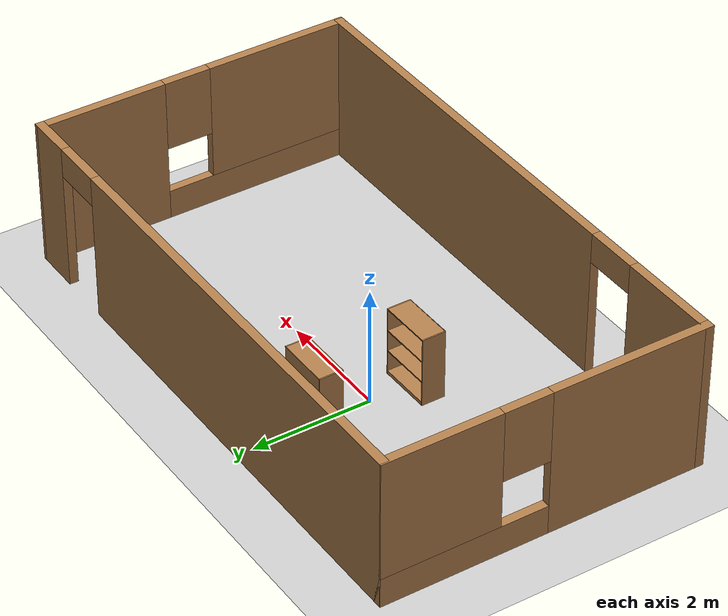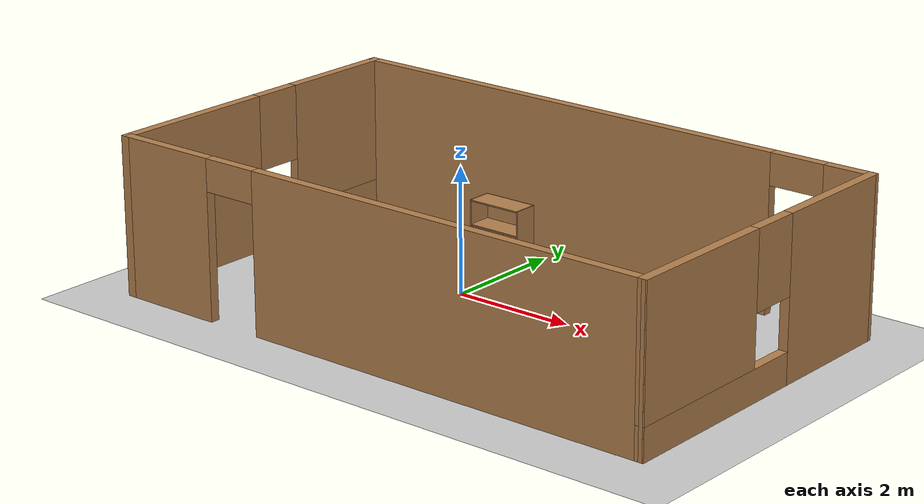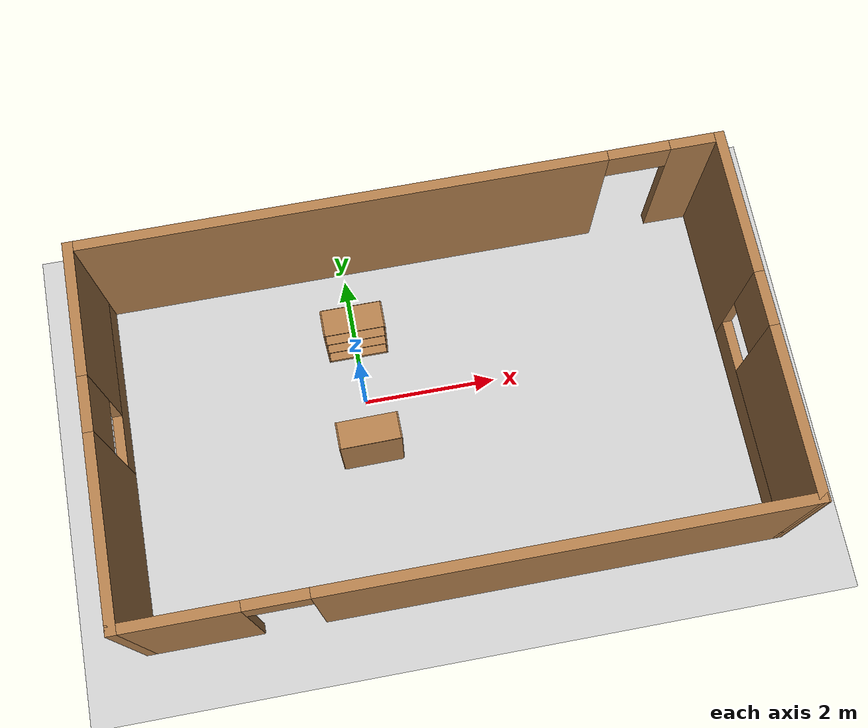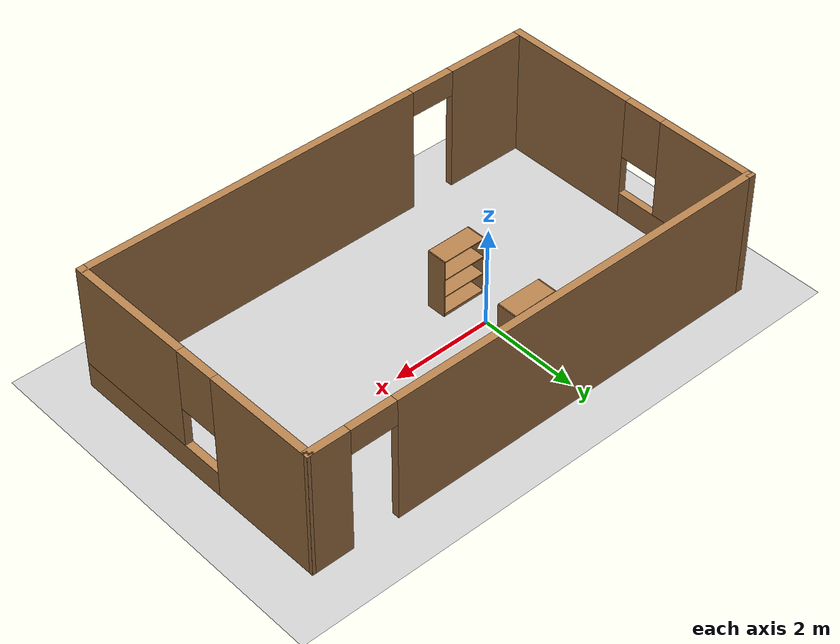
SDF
<sdf version="1.7">
 <world name="default">
  <light name="sun" type="directional">
   <pose>0 0 10 0 -0 0</pose>
   <diffuse>0.8 0.8 0.8 1</diffuse>
   <specular>0.2 0.2 0.2 1</specular>
   <attenuation>
    <range>1000</range>
    <constant>0.9</constant>
    <linear>0.01</linear>
    <quadratic>0.001</quadratic>
   </attenuation>
   <direction>-0.5 0.1 -0.9</direction>
   <spot><inner_angle>0</inner_angle><outer_angle>0</outer_angle><falloff>0</falloff></spot>
  </light>
  <model name="ground_plane">
   <static>1</static>
   <link name="link">
    <collision name="collision">
     <geometry><plane><normal>0 0 1</normal><size>100 100</size></plane></geometry>
     <surface>
      <contact><collide_bitmask>65535</collide_bitmask></contact>
      <friction><ode><mu>100</mu><mu2>50</mu2></ode></friction>
     </surface>
    </collision>
    <visual name="visual">
     <cast_shadows>0</cast_shadows>
     <geometry><plane><normal>0 0 1</normal><size>100 100</size></plane></geometry>
     <material>
      <script><uri>file://media/materials/scripts/gazebo.material</uri><name>Gazebo/Grey</name></script>
     </material>
    </visual>
   </link>
  </model>
  <gravity>0 0 -9.8</gravity>
  <magnetic_field>6e-06 2.3e-05 -4.2e-05</magnetic_field>
  <atmosphere type="adiabatic"/>
  <physics type="ode">
   <max_step_size>0.001</max_step_size>
   <real_time_factor>1</real_time_factor>
   <real_time_update_rate>1000</real_time_update_rate>
  </physics>
  <scene><ambient>0.4 0.4 0.4 1</ambient><background>0.7 0.7 0.7 1</background><shadows>1</shadows></scene>
  <audio><device>default</device></audio>
  <spherical_coordinates>
   <surface_model>EARTH_WGS84</surface_model>
   <latitude_deg>0</latitude_deg>
   <longitude_deg>0</longitude_deg>
   <elevation>0</elevation>
   <heading_deg>0</heading_deg>
  </spherical_coordinates>
  <model name="bookshelf">
   <static>1</static>
   <link name="link">
    <inertial><mass>1</mass></inertial>
    <collision name="back">
     <pose>0 0.005 0.6 0 -0 0</pose>
     <geometry><box><size>0.9 0.01 1.2</size></box></geometry>
    </collision>
    <visual name="visual1">
     <pose>0 0.005 0.6 0 -0 0</pose>
     <geometry><box><size>0.9 0.01 1.2</size></box></geometry>
     <material>
      <script><uri>file://media/materials/scripts/gazebo.material</uri><name>Gazebo/Wood</name></script>
     </material>
    </visual>
    <collision name="left_side">
     <pose>0.45 -0.195 0.6 0 -0 0</pose>
     <geometry><box><size>0.02 0.4 1.2</size></box></geometry>
    </collision>
    <visual name="visual2">
     <pose>0.45 -0.195 0.6 0 -0 0</pose>
     <geometry><box><size>0.02 0.4 1.2</size></box></geometry>
     <material>
      <script><uri>file://media/materials/scripts/gazebo.material</uri><name>Gazebo/Wood</name></script>
     </material>
    </visual>
    <collision name="right_side">
     <pose>-0.45 -0.195 0.6 0 -0 0</pose>
     <geometry><box><size>0.02 0.4 1.2</size></box></geometry>
    </collision>
    <visual name="visual3">
     <pose>-0.45 -0.195 0.6 0 -0 0</pose>
     <geometry><box><size>0.02 0.4 1.2</size></box></geometry>
     <material>
      <script><uri>file://media/materials/scripts/gazebo.material</uri><name>Gazebo/Wood</name></script>
     </material>
    </visual>
    <collision name="bottom">
     <pose>0 -0.195 0.03 0 -0 0</pose>
     <geometry><box><size>0.88 0.4 0.06</size></box></geometry>
    </collision>
    <visual name="visual4">
     <pose>0 -0.195 0.03 0 -0 0</pose>
     <geometry><box><size>0.88 0.4 0.06</size></box></geometry>
     <material>
      <script><uri>file://media/materials/scripts/gazebo.material</uri><name>Gazebo/Wood</name></script>
     </material>
    </visual>
    <collision name="top">
     <pose>0 -0.195 1.19 0 -0 0</pose>
     <geometry><box><size>0.88 0.4 0.02</size></box></geometry>
    </collision>
    <visual name="visual5">
     <pose>0 -0.195 1.19 0 -0 0</pose>
     <geometry><box><size>0.88 0.4 0.02</size></box></geometry>
     <material>
      <script><uri>file://media/materials/scripts/gazebo.material</uri><name>Gazebo/Wood</name></script>
     </material>
    </visual>
    <collision name="low_shelf">
     <pose>0 -0.195 0.43 0 -0 0</pose>
     <geometry><box><size>0.88 0.4 0.02</size></box></geometry>
    </collision>
    <visual name="visual6">
     <pose>0 -0.195 0.43 0 -0 0</pose>
     <geometry><box><size>0.88 0.4 0.02</size></box></geometry>
     <material>
      <script><uri>file://media/materials/scripts/gazebo.material</uri><name>Gazebo/Wood</name></script>
     </material>
    </visual>
    <collision name="high_shelf">
     <pose>0 -0.195 0.8 0 -0 0</pose>
     <geometry><box><size>0.88 0.4 0.02</size></box></geometry>
    </collision>
    <visual name="visual7">
     <pose>0 -0.195 0.8 0 -0 0</pose>
     <geometry><box><size>0.88 0.4 0.02</size></box></geometry>
     <material>
      <script><uri>file://media/materials/scripts/gazebo.material</uri><name>Gazebo/Wood</name></script>
     </material>
    </visual>
   </link>
   <pose>0.016472 1.13426 0 0 -0 0</pose>
  </model>
  <model name="bookshelf_0">
   <static>1</static>
   <link name="link">
    <inertial><mass>1</mass></inertial>
    <collision name="back">
     <pose>0 0.005 0.6 0 -0 0</pose>
     <geometry><box><size>0.9 0.01 1.2</size></box></geometry>
    </collision>
    <visual name="visual1">
     <pose>0 0.005 0.6 0 -0 0</pose>
     <geometry><box><size>0.9 0.01 1.2</size></box></geometry>
     <material>
      <script><uri>file://media/materials/scripts/gazebo.material</uri><name>Gazebo/Wood</name></script>
     </material>
    </visual>
    <collision name="left_side">
     <pose>0.45 -0.195 0.6 0 -0 0</pose>
     <geometry><box><size>0.02 0.4 1.2</size></box></geometry>
    </collision>
    <visual name="visual2">
     <pose>0.45 -0.195 0.6 0 -0 0</pose>
     <geometry><box><size>0.02 0.4 1.2</size></box></geometry>
     <material>
      <script><uri>file://media/materials/scripts/gazebo.material</uri><name>Gazebo/Wood</name></script>
     </material>
    </visual>
    <collision name="right_side">
     <pose>-0.45 -0.195 0.6 0 -0 0</pose>
     <geometry><box><size>0.02 0.4 1.2</size></box></geometry>
    </collision>
    <visual name="visual3">
     <pose>-0.45 -0.195 0.6 0 -0 0</pose>
     <geometry><box><size>0.02 0.4 1.2</size></box></geometry>
     <material>
      <script><uri>file://media/materials/scripts/gazebo.material</uri><name>Gazebo/Wood</name></script>
     </material>
    </visual>
    <collision name="bottom">
     <pose>0 -0.195 0.03 0 -0 0</pose>
     <geometry><box><size>0.88 0.4 0.06</size></box></geometry>
    </collision>
    <visual name="visual4">
     <pose>0 -0.195 0.03 0 -0 0</pose>
     <geometry><box><size>0.88 0.4 0.06</size></box></geometry>
     <material>
      <script><uri>file://media/materials/scripts/gazebo.material</uri><name>Gazebo/Wood</name></script>
     </material>
    </visual>
    <collision name="top">
     <pose>0 -0.195 1.19 0 -0 0</pose>
     <geometry><box><size>0.88 0.4 0.02</size></box></geometry>
    </collision>
    <visual name="visual5">
     <pose>0 -0.195 1.19 0 -0 0</pose>
     <geometry><box><size>0.88 0.4 0.02</size></box></geometry>
     <material>
      <script><uri>file://media/materials/scripts/gazebo.material</uri><name>Gazebo/Wood</name></script>
     </material>
    </visual>
    <collision name="low_shelf">
     <pose>0 -0.195 0.43 0 -0 0</pose>
     <geometry><box><size>0.88 0.4 0.02</size></box></geometry>
    </collision>
    <visual name="visual6">
     <pose>0 -0.195 0.43 0 -0 0</pose>
     <geometry><box><size>0.88 0.4 0.02</size></box></geometry>
     <material>
      <script><uri>file://media/materials/scripts/gazebo.material</uri><name>Gazebo/Wood</name></script>
     </material>
    </visual>
    <collision name="high_shelf">
     <pose>0 -0.195 0.8 0 -0 0</pose>
     <geometry><box><size>0.88 0.4 0.02</size></box></geometry>
    </collision>
    <visual name="visual7">
     <pose>0 -0.195 0.8 0 -0 0</pose>
     <geometry><box><size>0.88 0.4 0.02</size></box></geometry>
     <material>
      <script><uri>file://media/materials/scripts/gazebo.material</uri><name>Gazebo/Wood</name></script>
     </material>
    </visual>
   </link>
   <pose>-0.031814 -0.974703 0 0 0 -3.13331</pose>
  </model>
  <model name="room">
   <pose>0.989537 -0.455 0 0 -0 0</pose>
   <link name="Wall_10">
    <pose>-0.011724 -2.675 0 0 -0 3.14159</pose>
    <visual name="Wall_10_Visual_0">
     <pose>-1.32151 0 1.25 0 -0 0</pose>
     <geometry><box><size>6.85699 0.15 2.5</size></box></geometry>
     <material>
      <script><uri>file://media/materials/scripts/gazebo.material</uri><name>Gazebo/Wood</name></script>
      <ambient>1 1 1 1</ambient>
     </material>
     <meta><layer>0</layer></meta>
    </visual>
    <collision name="Wall_10_Collision_0">
     <geometry><box><size>6.85699 0.15 2.5</size></box></geometry>
     <pose>-1.32151 0 1.25 0 -0 0</pose>
    </collision>
    <visual name="Wall_10_Visual_1">
     <pose>3.87849 0 1.25 0 -0 0</pose>
     <geometry><box><size>1.74301 0.15 2.5</size></box></geometry>
     <material>
      <script><uri>file://media/materials/scripts/gazebo.material</uri><name>Gazebo/Wood</name></script>
      <ambient>1 1 1 1</ambient>
     </material>
     <meta><layer>0</layer></meta>
    </visual>
    <collision name="Wall_10_Collision_1">
     <geometry><box><size>1.74301 0.15 2.5</size></box></geometry>
     <pose>3.87849 0 1.25 0 -0 0</pose>
    </collision>
    <visual name="Wall_10_Visual_2">
     <pose>2.55699 0 2.25 0 -0 0</pose>
     <geometry><box><size>0.9 0.15 0.5</size></box></geometry>
     <material>
      <script><uri>file://media/materials/scripts/gazebo.material</uri><name>Gazebo/Wood</name></script>
      <ambient>1 1 1 1</ambient>
     </material>
     <meta><layer>0</layer></meta>
    </visual>
    <collision name="Wall_10_Collision_2">
     <geometry><box><size>0.9 0.15 0.5</size></box></geometry>
     <pose>2.55699 0 2.25 0 -0 0</pose>
    </collision>
   </link>
   <link name="Wall_7">
    <pose>-4.68672 -0 0 0 -0 1.5708</pose>
    <visual name="Wall_7_Visual_0">
     <pose>-1.39014 0 1.25 0 -0 0</pose>
     <geometry><box><size>2.71972 0.15 2.5</size></box></geometry>
     <material>
      <script><uri>file://media/materials/scripts/gazebo.material</uri><name>Gazebo/Wood</name></script>
      <ambient>1 1 1 1</ambient>
     </material>
     <meta><layer>0</layer></meta>
    </visual>
    <collision name="Wall_7_Collision_0">
     <geometry><box><size>2.71972 0.15 2.5</size></box></geometry>
     <pose>-1.39014 0 1.25 0 -0 0</pose>
    </collision>
    <visual name="Wall_7_Visual_1">
     <pose>1.35986 0 0.25 0 -0 0</pose>
     <geometry><box><size>2.78028 0.15 0.5</size></box></geometry>
     <material>
      <script><uri>file://media/materials/scripts/gazebo.material</uri><name>Gazebo/Wood</name></script>
      <ambient>1 1 1 1</ambient>
     </material>
     <meta><layer>0</layer></meta>
    </visual>
    <collision name="Wall_7_Collision_1">
     <geometry><box><size>2.78028 0.15 0.5</size></box></geometry>
     <pose>1.35986 0 0.25 0 -0 0</pose>
    </collision>
    <visual name="Wall_7_Visual_2">
     <pose>1.75986 0 1.5 0 -0 0</pose>
     <geometry><box><size>1.98028 0.15 2</size></box></geometry>
     <material>
      <script><uri>file://media/materials/scripts/gazebo.material</uri><name>Gazebo/Wood</name></script>
      <ambient>1 1 1 1</ambient>
     </material>
     <meta><layer>0</layer></meta>
    </visual>
    <collision name="Wall_7_Collision_2">
     <geometry><box><size>1.98028 0.15 2</size></box></geometry>
     <pose>1.75986 0 1.5 0 -0 0</pose>
    </collision>
    <visual name="Wall_7_Visual_3">
     <pose>0.369722 0 1.9 0 -0 0</pose>
     <geometry><box><size>0.8 0.15 1.2</size></box></geometry>
     <material>
      <script><uri>file://media/materials/scripts/gazebo.material</uri><name>Gazebo/Wood</name></script>
      <ambient>1 1 1 1</ambient>
     </material>
     <meta><layer>0</layer></meta>
    </visual>
    <collision name="Wall_7_Collision_3">
     <geometry><box><size>0.8 0.15 1.2</size></box></geometry>
     <pose>0.369722 0 1.9 0 -0 0</pose>
    </collision>
   </link>
   <link name="Wall_8">
    <pose>-0.011724 2.675 0 0 -0 0</pose>
    <visual name="Wall_8_Visual_0">
     <pose>-0.855755 0 1.25 0 -0 0</pose>
     <geometry><box><size>7.74286 0.15 2.5</size></box></geometry>
     <material>
      <script><uri>file://media/materials/scripts/gazebo.material</uri><name>Gazebo/Wood</name></script>
      <ambient>1 1 1 1</ambient>
     </material>
     <meta><layer>0</layer></meta>
    </visual>
    <collision name="Wall_8_Collision_0">
     <geometry><box><size>7.74286 0.15 2.5</size></box></geometry>
     <pose>-0.855755 0 1.25 0 -0 0</pose>
    </collision>
    <visual name="Wall_8_Visual_1">
     <pose>4.32143 0 1.25 0 -0 0</pose>
     <geometry><box><size>0.81151 0.15 2.5</size></box></geometry>
     <material>
      <script><uri>file://media/materials/scripts/gazebo.material</uri><name>Gazebo/Wood</name></script>
      <ambient>1 1 1 1</ambient>
     </material>
     <meta><layer>0</layer></meta>
    </visual>
    <collision name="Wall_8_Collision_1">
     <geometry><box><size>0.81151 0.15 2.5</size></box></geometry>
     <pose>4.32143 0 1.25 0 -0 0</pose>
    </collision>
    <visual name="Wall_8_Visual_2">
     <pose>3.46568 0 2.25 0 -0 0</pose>
     <geometry><box><size>0.9 0.15 0.5</size></box></geometry>
     <material>
      <script><uri>file://media/materials/scripts/gazebo.material</uri><name>Gazebo/Wood</name></script>
      <ambient>1 1 1 1</ambient>
     </material>
     <meta><layer>0</layer></meta>
    </visual>
    <collision name="Wall_8_Collision_2">
     <geometry><box><size>0.9 0.15 0.5</size></box></geometry>
     <pose>3.46568 0 2.25 0 -0 0</pose>
    </collision>
   </link>
   <link name="Wall_9">
    <pose>4.66327 -0 0 0 -0 -1.56227</pose>
    <visual name="Wall_9_Visual_0">
     <pose>-1.65701 0 1.25 0 -0 0</pose>
     <geometry><box><size>2.18599 0.15 2.5</size></box></geometry>
     <material>
      <script><uri>file://media/materials/scripts/gazebo.material</uri><name>Gazebo/Wood</name></script>
      <ambient>1 1 1 1</ambient>
     </material>
     <meta><layer>0</layer></meta>
    </visual>
    <collision name="Wall_9_Collision_0">
     <geometry><box><size>2.18599 0.15 2.5</size></box></geometry>
     <pose>-1.65701 0 1.25 0 -0 0</pose>
    </collision>
    <visual name="Wall_9_Visual_1">
     <pose>1.09299 0 0.25 0 -0 0</pose>
     <geometry><box><size>3.31401 0.15 0.5</size></box></geometry>
     <material>
      <script><uri>file://media/materials/scripts/gazebo.material</uri><name>Gazebo/Wood</name></script>
      <ambient>1 1 1 1</ambient>
     </material>
     <meta><layer>0</layer></meta>
    </visual>
    <collision name="Wall_9_Collision_1">
     <geometry><box><size>3.31401 0.15 0.5</size></box></geometry>
     <pose>1.09299 0 0.25 0 -0 0</pose>
    </collision>
    <visual name="Wall_9_Visual_2">
     <pose>1.493 0 1.5 0 -0 0</pose>
     <geometry><box><size>2.51401 0.15 2</size></box></geometry>
     <material>
      <script><uri>file://media/materials/scripts/gazebo.material</uri><name>Gazebo/Wood</name></script>
      <ambient>1 1 1 1</ambient>
     </material>
     <meta><layer>0</layer></meta>
    </visual>
    <collision name="Wall_9_Collision_2">
     <geometry><box><size>2.51401 0.15 2</size></box></geometry>
     <pose>1.493 0 1.5 0 -0 0</pose>
    </collision>
    <visual name="Wall_9_Visual_3">
     <pose>-0.164011 0 1.9 0 -0 0</pose>
     <geometry><box><size>0.8 0.15 1.2</size></box></geometry>
     <material>
      <script><uri>file://media/materials/scripts/gazebo.material</uri><name>Gazebo/Wood</name></script>
      <ambient>1 1 1 1</ambient>
     </material>
     <meta><layer>0</layer></meta>
    </visual>
    <collision name="Wall_9_Collision_3">
     <geometry><box><size>0.8 0.15 1.2</size></box></geometry>
     <pose>-0.164011 0 1.9 0 -0 0</pose>
    </collision>
   </link>
   <static>1</static>
  </model>
 </world>
</sdf>
